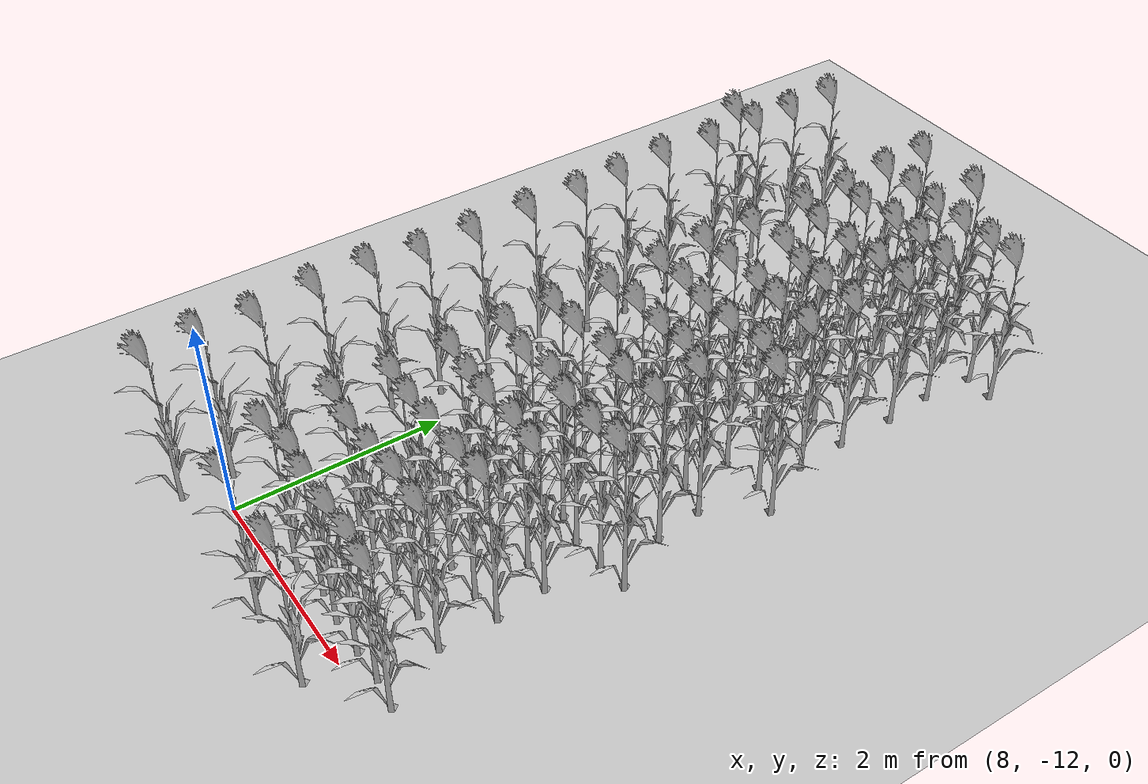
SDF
<sdf version="1.7">
 <world name="farmland_world">
  <model name="ground_plane">
   <static>1</static>
   <link name="link">
    <collision name="collision">
     <geometry><plane><normal>0 0 1</normal><size>40.0 40.0</size></plane></geometry>
     <surface><friction><ode><mu>100</mu><mu2>50</mu2></ode></friction></surface>
    </collision>
    <visual name="visual">
     <cast_shadows>0</cast_shadows>
     <geometry><plane><normal>0 0 1</normal><size>40.0 40.0</size></plane></geometry>
     <material>
      <script><uri>file://media/materials/scripts/gazebo.material</uri><name>Gazebo/Grey</name></script>
     </material>
    </visual>
   </link>
  </model>
  <model name="tree_3_1089">
   <static>1</static>
   <link name="link">
    <collision name="collision">
     <geometry><mesh><uri>model://Corn_low_poly/corn.obj</uri><scale>1 1 1</scale></mesh></geometry>
     <surface><friction><ode><mu>100</mu><mu2>50</mu2></ode></friction></surface>
    </collision>
    <visual name="visual">
     <geometry><mesh><uri>model://Corn_low_poly/corn.obj</uri><scale>1 1 1</scale></mesh></geometry>
    </visual>
   </link>
   <pose>7.373463043404598 -6.061614558114489 0 0 0 0</pose>
  </model>
  <model name="tree_3_1113">
   <static>1</static>
   <link name="link">
    <collision name="collision">
     <geometry><mesh><uri>model://Corn_low_poly/corn.obj</uri><scale>1 1 1</scale></mesh></geometry>
     <surface><friction><ode><mu>100</mu><mu2>50</mu2></ode></friction></surface>
    </collision>
    <visual name="visual">
     <geometry><mesh><uri>model://Corn_low_poly/corn.obj</uri><scale>1 1 1</scale></mesh></geometry>
    </visual>
   </link>
   <pose>7.643223197940779 -5.087201397989733 0 0 0 0</pose>
  </model>
  <model name="tree_3_1114">
   <static>1</static>
   <link name="link">
    <collision name="collision">
     <geometry><mesh><uri>model://Corn_low_poly/corn.obj</uri><scale>1 1 1</scale></mesh></geometry>
     <surface><friction><ode><mu>100</mu><mu2>50</mu2></ode></friction></surface>
    </collision>
    <visual name="visual">
     <geometry><mesh><uri>model://Corn_low_poly/corn.obj</uri><scale>1 1 1</scale></mesh></geometry>
    </visual>
   </link>
   <pose>7.661120329069132 -5.601592224473214 0 0 0 0</pose>
  </model>
  <model name="tree_3_1115">
   <static>1</static>
   <link name="link">
    <collision name="collision">
     <geometry><mesh><uri>model://Corn_low_poly/corn.obj</uri><scale>1 1 1</scale></mesh></geometry>
     <surface><friction><ode><mu>100</mu><mu2>50</mu2></ode></friction></surface>
    </collision>
    <visual name="visual">
     <geometry><mesh><uri>model://Corn_low_poly/corn.obj</uri><scale>1 1 1</scale></mesh></geometry>
    </visual>
   </link>
   <pose>7.63402802859221 -6.031344780139192 0 0 0 0</pose>
  </model>
  <model name="tree_3_1116">
   <static>1</static>
   <link name="link">
    <collision name="collision">
     <geometry><mesh><uri>model://Corn_low_poly/corn.obj</uri><scale>1 1 1</scale></mesh></geometry>
     <surface><friction><ode><mu>100</mu><mu2>50</mu2></ode></friction></surface>
    </collision>
    <visual name="visual">
     <geometry><mesh><uri>model://Corn_low_poly/corn.obj</uri><scale>1 1 1</scale></mesh></geometry>
    </visual>
   </link>
   <pose>7.66875264356277 -6.585203287229432 0 0 0 0</pose>
  </model>
  <model name="tree_3_1117">
   <static>1</static>
   <link name="link">
    <collision name="collision">
     <geometry><mesh><uri>model://Corn_low_poly/corn.obj</uri><scale>1 1 1</scale></mesh></geometry>
     <surface><friction><ode><mu>100</mu><mu2>50</mu2></ode></friction></surface>
    </collision>
    <visual name="visual">
     <geometry><mesh><uri>model://Corn_low_poly/corn.obj</uri><scale>1 1 1</scale></mesh></geometry>
    </visual>
   </link>
   <pose>7.6212773356559635 -7.12121448393807 0 0 0 0</pose>
  </model>
  <model name="tree_3_1118">
   <static>1</static>
   <link name="link">
    <collision name="collision">
     <geometry><mesh><uri>model://Corn_low_poly/corn.obj</uri><scale>1 1 1</scale></mesh></geometry>
     <surface><friction><ode><mu>100</mu><mu2>50</mu2></ode></friction></surface>
    </collision>
    <visual name="visual">
     <geometry><mesh><uri>model://Corn_low_poly/corn.obj</uri><scale>1 1 1</scale></mesh></geometry>
    </visual>
   </link>
   <pose>7.664107159891394 -7.650606513183118 0 0 0 0</pose>
  </model>
  <model name="tree_3_1119">
   <static>1</static>
   <link name="link">
    <collision name="collision">
     <geometry><mesh><uri>model://Corn_low_poly/corn.obj</uri><scale>1 1 1</scale></mesh></geometry>
     <surface><friction><ode><mu>100</mu><mu2>50</mu2></ode></friction></surface>
    </collision>
    <visual name="visual">
     <geometry><mesh><uri>model://Corn_low_poly/corn.obj</uri><scale>1 1 1</scale></mesh></geometry>
    </visual>
   </link>
   <pose>7.694366505356116 -8.120791481744874 0 0 0 0</pose>
  </model>
  <model name="tree_3_1120">
   <static>1</static>
   <link name="link">
    <collision name="collision">
     <geometry><mesh><uri>model://Corn_low_poly/corn.obj</uri><scale>1 1 1</scale></mesh></geometry>
     <surface><friction><ode><mu>100</mu><mu2>50</mu2></ode></friction></surface>
    </collision>
    <visual name="visual">
     <geometry><mesh><uri>model://Corn_low_poly/corn.obj</uri><scale>1 1 1</scale></mesh></geometry>
    </visual>
   </link>
   <pose>7.683954685809322 -8.664213094252231 0 0 0 0</pose>
  </model>
  <model name="tree_3_1121">
   <static>1</static>
   <link name="link">
    <collision name="collision">
     <geometry><mesh><uri>model://Corn_low_poly/corn.obj</uri><scale>1 1 1</scale></mesh></geometry>
     <surface><friction><ode><mu>100</mu><mu2>50</mu2></ode></friction></surface>
    </collision>
    <visual name="visual">
     <geometry><mesh><uri>model://Corn_low_poly/corn.obj</uri><scale>1 1 1</scale></mesh></geometry>
    </visual>
   </link>
   <pose>7.706808902903273 -9.24765323350071 0 0 0 0</pose>
  </model>
  <model name="tree_3_1122">
   <static>1</static>
   <link name="link">
    <collision name="collision">
     <geometry><mesh><uri>model://Corn_low_poly/corn.obj</uri><scale>1 1 1</scale></mesh></geometry>
     <surface><friction><ode><mu>100</mu><mu2>50</mu2></ode></friction></surface>
    </collision>
    <visual name="visual">
     <geometry><mesh><uri>model://Corn_low_poly/corn.obj</uri><scale>1 1 1</scale></mesh></geometry>
    </visual>
   </link>
   <pose>7.697520223263541 -9.76146941336156 0 0 0 0</pose>
  </model>
  <model name="tree_3_1123">
   <static>1</static>
   <link name="link">
    <collision name="collision">
     <geometry><mesh><uri>model://Corn_low_poly/corn.obj</uri><scale>1 1 1</scale></mesh></geometry>
     <surface><friction><ode><mu>100</mu><mu2>50</mu2></ode></friction></surface>
    </collision>
    <visual name="visual">
     <geometry><mesh><uri>model://Corn_low_poly/corn.obj</uri><scale>1 1 1</scale></mesh></geometry>
    </visual>
   </link>
   <pose>7.623219884596177 -10.236661311143688 0 0 0 0</pose>
  </model>
  <model name="tree_3_1124">
   <static>1</static>
   <link name="link">
    <collision name="collision">
     <geometry><mesh><uri>model://Corn_low_poly/corn.obj</uri><scale>1 1 1</scale></mesh></geometry>
     <surface><friction><ode><mu>100</mu><mu2>50</mu2></ode></friction></surface>
    </collision>
    <visual name="visual">
     <geometry><mesh><uri>model://Corn_low_poly/corn.obj</uri><scale>1 1 1</scale></mesh></geometry>
    </visual>
   </link>
   <pose>7.625424230541446 -10.757639816009913 0 0 0 0</pose>
  </model>
  <model name="tree_3_1125">
   <static>1</static>
   <link name="link">
    <collision name="collision">
     <geometry><mesh><uri>model://Corn_low_poly/corn.obj</uri><scale>1 1 1</scale></mesh></geometry>
     <surface><friction><ode><mu>100</mu><mu2>50</mu2></ode></friction></surface>
    </collision>
    <visual name="visual">
     <geometry><mesh><uri>model://Corn_low_poly/corn.obj</uri><scale>1 1 1</scale></mesh></geometry>
    </visual>
   </link>
   <pose>7.698247415521829 -11.328317349767586 0 0 0 0</pose>
  </model>
  <model name="tree_3_1126">
   <static>1</static>
   <link name="link">
    <collision name="collision">
     <geometry><mesh><uri>model://Corn_low_poly/corn.obj</uri><scale>1 1 1</scale></mesh></geometry>
     <surface><friction><ode><mu>100</mu><mu2>50</mu2></ode></friction></surface>
    </collision>
    <visual name="visual">
     <geometry><mesh><uri>model://Corn_low_poly/corn.obj</uri><scale>1 1 1</scale></mesh></geometry>
    </visual>
   </link>
   <pose>7.647416739573974 -11.81360957177488 0 0 0 0</pose>
  </model>
  <model name="tree_3_1127">
   <static>1</static>
   <link name="link">
    <collision name="collision">
     <geometry><mesh><uri>model://Corn_low_poly/corn.obj</uri><scale>1 1 1</scale></mesh></geometry>
     <surface><friction><ode><mu>100</mu><mu2>50</mu2></ode></friction></surface>
    </collision>
    <visual name="visual">
     <geometry><mesh><uri>model://Corn_low_poly/corn.obj</uri><scale>1 1 1</scale></mesh></geometry>
    </visual>
   </link>
   <pose>7.655448347450653 -12.290702209058429 0 0 0 0</pose>
  </model>
  <model name="tree_3_1139">
   <static>1</static>
   <link name="link">
    <collision name="collision">
     <geometry><mesh><uri>model://Corn_low_poly/corn.obj</uri><scale>1 1 1</scale></mesh></geometry>
     <surface><friction><ode><mu>100</mu><mu2>50</mu2></ode></friction></surface>
    </collision>
    <visual name="visual">
     <geometry><mesh><uri>model://Corn_low_poly/corn.obj</uri><scale>1 1 1</scale></mesh></geometry>
    </visual>
   </link>
   <pose>8.96567127282083 -5.062800397356018 0 0 0 0</pose>
  </model>
  <model name="tree_3_1140">
   <static>1</static>
   <link name="link">
    <collision name="collision">
     <geometry><mesh><uri>model://Corn_low_poly/corn.obj</uri><scale>1 1 1</scale></mesh></geometry>
     <surface><friction><ode><mu>100</mu><mu2>50</mu2></ode></friction></surface>
    </collision>
    <visual name="visual">
     <geometry><mesh><uri>model://Corn_low_poly/corn.obj</uri><scale>1 1 1</scale></mesh></geometry>
    </visual>
   </link>
   <pose>8.978622709243822 -5.548538041759192 0 0 0 0</pose>
  </model>
  <model name="tree_3_1141">
   <static>1</static>
   <link name="link">
    <collision name="collision">
     <geometry><mesh><uri>model://Corn_low_poly/corn.obj</uri><scale>1 1 1</scale></mesh></geometry>
     <surface><friction><ode><mu>100</mu><mu2>50</mu2></ode></friction></surface>
    </collision>
    <visual name="visual">
     <geometry><mesh><uri>model://Corn_low_poly/corn.obj</uri><scale>1 1 1</scale></mesh></geometry>
    </visual>
   </link>
   <pose>9.020095383873397 -6.06532683944891 0 0 0 0</pose>
  </model>
  <model name="tree_3_1142">
   <static>1</static>
   <link name="link">
    <collision name="collision">
     <geometry><mesh><uri>model://Corn_low_poly/corn.obj</uri><scale>1 1 1</scale></mesh></geometry>
     <surface><friction><ode><mu>100</mu><mu2>50</mu2></ode></friction></surface>
    </collision>
    <visual name="visual">
     <geometry><mesh><uri>model://Corn_low_poly/corn.obj</uri><scale>1 1 1</scale></mesh></geometry>
    </visual>
   </link>
   <pose>9.01230063168478 -6.5615183018766015 0 0 0 0</pose>
  </model>
  <model name="tree_3_1143">
   <static>1</static>
   <link name="link">
    <collision name="collision">
     <geometry><mesh><uri>model://Corn_low_poly/corn.obj</uri><scale>1 1 1</scale></mesh></geometry>
     <surface><friction><ode><mu>100</mu><mu2>50</mu2></ode></friction></surface>
    </collision>
    <visual name="visual">
     <geometry><mesh><uri>model://Corn_low_poly/corn.obj</uri><scale>1 1 1</scale></mesh></geometry>
    </visual>
   </link>
   <pose>9.005956300258477 -7.151464572757111 0 0 0 0</pose>
  </model>
  <model name="tree_3_1144">
   <static>1</static>
   <link name="link">
    <collision name="collision">
     <geometry><mesh><uri>model://Corn_low_poly/corn.obj</uri><scale>1 1 1</scale></mesh></geometry>
     <surface><friction><ode><mu>100</mu><mu2>50</mu2></ode></friction></surface>
    </collision>
    <visual name="visual">
     <geometry><mesh><uri>model://Corn_low_poly/corn.obj</uri><scale>1 1 1</scale></mesh></geometry>
    </visual>
   </link>
   <pose>8.970138582536606 -7.651377074699915 0 0 0 0</pose>
  </model>
  <model name="tree_3_1145">
   <static>1</static>
   <link name="link">
    <collision name="collision">
     <geometry><mesh><uri>model://Corn_low_poly/corn.obj</uri><scale>1 1 1</scale></mesh></geometry>
     <surface><friction><ode><mu>100</mu><mu2>50</mu2></ode></friction></surface>
    </collision>
    <visual name="visual">
     <geometry><mesh><uri>model://Corn_low_poly/corn.obj</uri><scale>1 1 1</scale></mesh></geometry>
    </visual>
   </link>
   <pose>8.996400861401781 -8.150808558617635 0 0 0 0</pose>
  </model>
  <model name="tree_3_1146">
   <static>1</static>
   <link name="link">
    <collision name="collision">
     <geometry><mesh><uri>model://Corn_low_poly/corn.obj</uri><scale>1 1 1</scale></mesh></geometry>
     <surface><friction><ode><mu>100</mu><mu2>50</mu2></ode></friction></surface>
    </collision>
    <visual name="visual">
     <geometry><mesh><uri>model://Corn_low_poly/corn.obj</uri><scale>1 1 1</scale></mesh></geometry>
    </visual>
   </link>
   <pose>9.026399342011263 -8.690001157320415 0 0 0 0</pose>
  </model>
  <model name="tree_3_1147">
   <static>1</static>
   <link name="link">
    <collision name="collision">
     <geometry><mesh><uri>model://Corn_low_poly/corn.obj</uri><scale>1 1 1</scale></mesh></geometry>
     <surface><friction><ode><mu>100</mu><mu2>50</mu2></ode></friction></surface>
    </collision>
    <visual name="visual">
     <geometry><mesh><uri>model://Corn_low_poly/corn.obj</uri><scale>1 1 1</scale></mesh></geometry>
    </visual>
   </link>
   <pose>8.986738688260957 -9.218499689213568 0 0 0 0</pose>
  </model>
  <model name="tree_3_1148">
   <static>1</static>
   <link name="link">
    <collision name="collision">
     <geometry><mesh><uri>model://Corn_low_poly/corn.obj</uri><scale>1 1 1</scale></mesh></geometry>
     <surface><friction><ode><mu>100</mu><mu2>50</mu2></ode></friction></surface>
    </collision>
    <visual name="visual">
     <geometry><mesh><uri>model://Corn_low_poly/corn.obj</uri><scale>1 1 1</scale></mesh></geometry>
    </visual>
   </link>
   <pose>8.994399841065116 -9.685318026949306 0 0 0 0</pose>
  </model>
  <model name="tree_3_1149">
   <static>1</static>
   <link name="link">
    <collision name="collision">
     <geometry><mesh><uri>model://Corn_low_poly/corn.obj</uri><scale>1 1 1</scale></mesh></geometry>
     <surface><friction><ode><mu>100</mu><mu2>50</mu2></ode></friction></surface>
    </collision>
    <visual name="visual">
     <geometry><mesh><uri>model://Corn_low_poly/corn.obj</uri><scale>1 1 1</scale></mesh></geometry>
    </visual>
   </link>
   <pose>8.992408508656917 -10.202525275837697 0 0 0 0</pose>
  </model>
  <model name="tree_3_1150">
   <static>1</static>
   <link name="link">
    <collision name="collision">
     <geometry><mesh><uri>model://Corn_low_poly/corn.obj</uri><scale>1 1 1</scale></mesh></geometry>
     <surface><friction><ode><mu>100</mu><mu2>50</mu2></ode></friction></surface>
    </collision>
    <visual name="visual">
     <geometry><mesh><uri>model://Corn_low_poly/corn.obj</uri><scale>1 1 1</scale></mesh></geometry>
    </visual>
   </link>
   <pose>9.002899398710381 -10.738430988784868 0 0 0 0</pose>
  </model>
  <model name="tree_3_1151">
   <static>1</static>
   <link name="link">
    <collision name="collision">
     <geometry><mesh><uri>model://Corn_low_poly/corn.obj</uri><scale>1 1 1</scale></mesh></geometry>
     <surface><friction><ode><mu>100</mu><mu2>50</mu2></ode></friction></surface>
    </collision>
    <visual name="visual">
     <geometry><mesh><uri>model://Corn_low_poly/corn.obj</uri><scale>1 1 1</scale></mesh></geometry>
    </visual>
   </link>
   <pose>8.964173990640038 -11.23063824553889 0 0 0 0</pose>
  </model>
  <model name="tree_3_1152">
   <static>1</static>
   <link name="link">
    <collision name="collision">
     <geometry><mesh><uri>model://Corn_low_poly/corn.obj</uri><scale>1 1 1</scale></mesh></geometry>
     <surface><friction><ode><mu>100</mu><mu2>50</mu2></ode></friction></surface>
    </collision>
    <visual name="visual">
     <geometry><mesh><uri>model://Corn_low_poly/corn.obj</uri><scale>1 1 1</scale></mesh></geometry>
    </visual>
   </link>
   <pose>8.959381720760552 -11.817772347244972 0 0 0 0</pose>
  </model>
  <model name="tree_3_1166">
   <static>1</static>
   <link name="link">
    <collision name="collision">
     <geometry><mesh><uri>model://Corn_low_poly/corn.obj</uri><scale>1 1 1</scale></mesh></geometry>
     <surface><friction><ode><mu>100</mu><mu2>50</mu2></ode></friction></surface>
    </collision>
    <visual name="visual">
     <geometry><mesh><uri>model://Corn_low_poly/corn.obj</uri><scale>1 1 1</scale></mesh></geometry>
    </visual>
   </link>
   <pose>9.35311362840029 -5.549901497882502 0 0 0 0</pose>
  </model>
  <model name="tree_3_1167">
   <static>1</static>
   <link name="link">
    <collision name="collision">
     <geometry><mesh><uri>model://Corn_low_poly/corn.obj</uri><scale>1 1 1</scale></mesh></geometry>
     <surface><friction><ode><mu>100</mu><mu2>50</mu2></ode></friction></surface>
    </collision>
    <visual name="visual">
     <geometry><mesh><uri>model://Corn_low_poly/corn.obj</uri><scale>1 1 1</scale></mesh></geometry>
    </visual>
   </link>
   <pose>9.284637511514404 -6.109121542213807 0 0 0 0</pose>
  </model>
  <model name="tree_3_1168">
   <static>1</static>
   <link name="link">
    <collision name="collision">
     <geometry><mesh><uri>model://Corn_low_poly/corn.obj</uri><scale>1 1 1</scale></mesh></geometry>
     <surface><friction><ode><mu>100</mu><mu2>50</mu2></ode></friction></surface>
    </collision>
    <visual name="visual">
     <geometry><mesh><uri>model://Corn_low_poly/corn.obj</uri><scale>1 1 1</scale></mesh></geometry>
    </visual>
   </link>
   <pose>9.31249433925867 -6.629936638469689 0 0 0 0</pose>
  </model>
  <model name="tree_3_1169">
   <static>1</static>
   <link name="link">
    <collision name="collision">
     <geometry><mesh><uri>model://Corn_low_poly/corn.obj</uri><scale>1 1 1</scale></mesh></geometry>
     <surface><friction><ode><mu>100</mu><mu2>50</mu2></ode></friction></surface>
    </collision>
    <visual name="visual">
     <geometry><mesh><uri>model://Corn_low_poly/corn.obj</uri><scale>1 1 1</scale></mesh></geometry>
    </visual>
   </link>
   <pose>9.375427374370881 -7.085550428749509 0 0 0 0</pose>
  </model>
  <model name="tree_3_1170">
   <static>1</static>
   <link name="link">
    <collision name="collision">
     <geometry><mesh><uri>model://Corn_low_poly/corn.obj</uri><scale>1 1 1</scale></mesh></geometry>
     <surface><friction><ode><mu>100</mu><mu2>50</mu2></ode></friction></surface>
    </collision>
    <visual name="visual">
     <geometry><mesh><uri>model://Corn_low_poly/corn.obj</uri><scale>1 1 1</scale></mesh></geometry>
    </visual>
   </link>
   <pose>9.315569965163867 -7.650798030798965 0 0 0 0</pose>
  </model>
  <model name="tree_3_1171">
   <static>1</static>
   <link name="link">
    <collision name="collision">
     <geometry><mesh><uri>model://Corn_low_poly/corn.obj</uri><scale>1 1 1</scale></mesh></geometry>
     <surface><friction><ode><mu>100</mu><mu2>50</mu2></ode></friction></surface>
    </collision>
    <visual name="visual">
     <geometry><mesh><uri>model://Corn_low_poly/corn.obj</uri><scale>1 1 1</scale></mesh></geometry>
    </visual>
   </link>
   <pose>9.31538048760512 -8.13616135372896 0 0 0 0</pose>
  </model>
  <model name="tree_3_1172">
   <static>1</static>
   <link name="link">
    <collision name="collision">
     <geometry><mesh><uri>model://Corn_low_poly/corn.obj</uri><scale>1 1 1</scale></mesh></geometry>
     <surface><friction><ode><mu>100</mu><mu2>50</mu2></ode></friction></surface>
    </collision>
    <visual name="visual">
     <geometry><mesh><uri>model://Corn_low_poly/corn.obj</uri><scale>1 1 1</scale></mesh></geometry>
    </visual>
   </link>
   <pose>9.325990286509777 -8.633187590136304 0 0 0 0</pose>
  </model>
  <model name="tree_3_1173">
   <static>1</static>
   <link name="link">
    <collision name="collision">
     <geometry><mesh><uri>model://Corn_low_poly/corn.obj</uri><scale>1 1 1</scale></mesh></geometry>
     <surface><friction><ode><mu>100</mu><mu2>50</mu2></ode></friction></surface>
    </collision>
    <visual name="visual">
     <geometry><mesh><uri>model://Corn_low_poly/corn.obj</uri><scale>1 1 1</scale></mesh></geometry>
    </visual>
   </link>
   <pose>9.285424833063889 -9.214025456253827 0 0 0 0</pose>
  </model>
  <model name="tree_3_1174">
   <static>1</static>
   <link name="link">
    <collision name="collision">
     <geometry><mesh><uri>model://Corn_low_poly/corn.obj</uri><scale>1 1 1</scale></mesh></geometry>
     <surface><friction><ode><mu>100</mu><mu2>50</mu2></ode></friction></surface>
    </collision>
    <visual name="visual">
     <geometry><mesh><uri>model://Corn_low_poly/corn.obj</uri><scale>1 1 1</scale></mesh></geometry>
    </visual>
   </link>
   <pose>9.36697092961034 -9.755213772909675 0 0 0 0</pose>
  </model>
  <model name="tree_3_1175">
   <static>1</static>
   <link name="link">
    <collision name="collision">
     <geometry><mesh><uri>model://Corn_low_poly/corn.obj</uri><scale>1 1 1</scale></mesh></geometry>
     <surface><friction><ode><mu>100</mu><mu2>50</mu2></ode></friction></surface>
    </collision>
    <visual name="visual">
     <geometry><mesh><uri>model://Corn_low_poly/corn.obj</uri><scale>1 1 1</scale></mesh></geometry>
    </visual>
   </link>
   <pose>9.370632605185234 -10.252023421273263 0 0 0 0</pose>
  </model>
  <model name="tree_3_1176">
   <static>1</static>
   <link name="link">
    <collision name="collision">
     <geometry><mesh><uri>model://Corn_low_poly/corn.obj</uri><scale>1 1 1</scale></mesh></geometry>
     <surface><friction><ode><mu>100</mu><mu2>50</mu2></ode></friction></surface>
    </collision>
    <visual name="visual">
     <geometry><mesh><uri>model://Corn_low_poly/corn.obj</uri><scale>1 1 1</scale></mesh></geometry>
    </visual>
   </link>
   <pose>9.331844221340882 -10.764073994643248 0 0 0 0</pose>
  </model>
  <model name="tree_3_1177">
   <static>1</static>
   <link name="link">
    <collision name="collision">
     <geometry><mesh><uri>model://Corn_low_poly/corn.obj</uri><scale>1 1 1</scale></mesh></geometry>
     <surface><friction><ode><mu>100</mu><mu2>50</mu2></ode></friction></surface>
    </collision>
    <visual name="visual">
     <geometry><mesh><uri>model://Corn_low_poly/corn.obj</uri><scale>1 1 1</scale></mesh></geometry>
    </visual>
   </link>
   <pose>9.294299479450407 -11.269735053344665 0 0 0 0</pose>
  </model>
  <model name="tree_3_1178">
   <static>1</static>
   <link name="link">
    <collision name="collision">
     <geometry><mesh><uri>model://Corn_low_poly/corn.obj</uri><scale>1 1 1</scale></mesh></geometry>
     <surface><friction><ode><mu>100</mu><mu2>50</mu2></ode></friction></surface>
    </collision>
    <visual name="visual">
     <geometry><mesh><uri>model://Corn_low_poly/corn.obj</uri><scale>1 1 1</scale></mesh></geometry>
    </visual>
   </link>
   <pose>9.312309131688513 -11.756204968582152 0 0 0 0</pose>
  </model>
  <model name="tree_3_1179">
   <static>1</static>
   <link name="link">
    <collision name="collision">
     <geometry><mesh><uri>model://Corn_low_poly/corn.obj</uri><scale>1 1 1</scale></mesh></geometry>
     <surface><friction><ode><mu>100</mu><mu2>50</mu2></ode></friction></surface>
    </collision>
    <visual name="visual">
     <geometry><mesh><uri>model://Corn_low_poly/corn.obj</uri><scale>1 1 1</scale></mesh></geometry>
    </visual>
   </link>
   <pose>9.280427956645463 -12.291440116871625 0 0 0 0</pose>
  </model>
  <model name="tree_3_1191">
   <static>1</static>
   <link name="link">
    <collision name="collision">
     <geometry><mesh><uri>model://Corn_low_poly/corn.obj</uri><scale>1 1 1</scale></mesh></geometry>
     <surface><friction><ode><mu>100</mu><mu2>50</mu2></ode></friction></surface>
    </collision>
    <visual name="visual">
     <geometry><mesh><uri>model://Corn_low_poly/corn.obj</uri><scale>1 1 1</scale></mesh></geometry>
    </visual>
   </link>
   <pose>9.670857474584004 -5.0860366406483815 0 0 0 0</pose>
  </model>
  <model name="tree_3_1192">
   <static>1</static>
   <link name="link">
    <collision name="collision">
     <geometry><mesh><uri>model://Corn_low_poly/corn.obj</uri><scale>1 1 1</scale></mesh></geometry>
     <surface><friction><ode><mu>100</mu><mu2>50</mu2></ode></friction></surface>
    </collision>
    <visual name="visual">
     <geometry><mesh><uri>model://Corn_low_poly/corn.obj</uri><scale>1 1 1</scale></mesh></geometry>
    </visual>
   </link>
   <pose>9.682147667138377 -5.588062046399095 0 0 0 0</pose>
  </model>
  <model name="tree_3_1193">
   <static>1</static>
   <link name="link">
    <collision name="collision">
     <geometry><mesh><uri>model://Corn_low_poly/corn.obj</uri><scale>1 1 1</scale></mesh></geometry>
     <surface><friction><ode><mu>100</mu><mu2>50</mu2></ode></friction></surface>
    </collision>
    <visual name="visual">
     <geometry><mesh><uri>model://Corn_low_poly/corn.obj</uri><scale>1 1 1</scale></mesh></geometry>
    </visual>
   </link>
   <pose>9.647765691123427 -6.054509167526567 0 0 0 0</pose>
  </model>
  <model name="tree_3_1194">
   <static>1</static>
   <link name="link">
    <collision name="collision">
     <geometry><mesh><uri>model://Corn_low_poly/corn.obj</uri><scale>1 1 1</scale></mesh></geometry>
     <surface><friction><ode><mu>100</mu><mu2>50</mu2></ode></friction></surface>
    </collision>
    <visual name="visual">
     <geometry><mesh><uri>model://Corn_low_poly/corn.obj</uri><scale>1 1 1</scale></mesh></geometry>
    </visual>
   </link>
   <pose>9.699528651075525 -6.634319133805928 0 0 0 0</pose>
  </model>
  <model name="tree_3_1195">
   <static>1</static>
   <link name="link">
    <collision name="collision">
     <geometry><mesh><uri>model://Corn_low_poly/corn.obj</uri><scale>1 1 1</scale></mesh></geometry>
     <surface><friction><ode><mu>100</mu><mu2>50</mu2></ode></friction></surface>
    </collision>
    <visual name="visual">
     <geometry><mesh><uri>model://Corn_low_poly/corn.obj</uri><scale>1 1 1</scale></mesh></geometry>
    </visual>
   </link>
   <pose>9.709830327029346 -7.169057839072819 0 0 0 0</pose>
  </model>
  <model name="tree_3_1196">
   <static>1</static>
   <link name="link">
    <collision name="collision">
     <geometry><mesh><uri>model://Corn_low_poly/corn.obj</uri><scale>1 1 1</scale></mesh></geometry>
     <surface><friction><ode><mu>100</mu><mu2>50</mu2></ode></friction></surface>
    </collision>
    <visual name="visual">
     <geometry><mesh><uri>model://Corn_low_poly/corn.obj</uri><scale>1 1 1</scale></mesh></geometry>
    </visual>
   </link>
   <pose>9.692251166578535 -7.63606544719618 0 0 0 0</pose>
  </model>
  <model name="tree_3_1197">
   <static>1</static>
   <link name="link">
    <collision name="collision">
     <geometry><mesh><uri>model://Corn_low_poly/corn.obj</uri><scale>1 1 1</scale></mesh></geometry>
     <surface><friction><ode><mu>100</mu><mu2>50</mu2></ode></friction></surface>
    </collision>
    <visual name="visual">
     <geometry><mesh><uri>model://Corn_low_poly/corn.obj</uri><scale>1 1 1</scale></mesh></geometry>
    </visual>
   </link>
   <pose>9.647723043126854 -8.177939221876805 0 0 0 0</pose>
  </model>
  <model name="tree_3_1198">
   <static>1</static>
   <link name="link">
    <collision name="collision">
     <geometry><mesh><uri>model://Corn_low_poly/corn.obj</uri><scale>1 1 1</scale></mesh></geometry>
     <surface><friction><ode><mu>100</mu><mu2>50</mu2></ode></friction></surface>
    </collision>
    <visual name="visual">
     <geometry><mesh><uri>model://Corn_low_poly/corn.obj</uri><scale>1 1 1</scale></mesh></geometry>
    </visual>
   </link>
   <pose>9.688936635844287 -8.655358803314655 0 0 0 0</pose>
  </model>
  <model name="tree_3_1199">
   <static>1</static>
   <link name="link">
    <collision name="collision">
     <geometry><mesh><uri>model://Corn_low_poly/corn.obj</uri><scale>1 1 1</scale></mesh></geometry>
     <surface><friction><ode><mu>100</mu><mu2>50</mu2></ode></friction></surface>
    </collision>
    <visual name="visual">
     <geometry><mesh><uri>model://Corn_low_poly/corn.obj</uri><scale>1 1 1</scale></mesh></geometry>
    </visual>
   </link>
   <pose>9.717906772350617 -9.183026899597644 0 0 0 0</pose>
  </model>
  <model name="tree_3_1200">
   <static>1</static>
   <link name="link">
    <collision name="collision">
     <geometry><mesh><uri>model://Corn_low_poly/corn.obj</uri><scale>1 1 1</scale></mesh></geometry>
     <surface><friction><ode><mu>100</mu><mu2>50</mu2></ode></friction></surface>
    </collision>
    <visual name="visual">
     <geometry><mesh><uri>model://Corn_low_poly/corn.obj</uri><scale>1 1 1</scale></mesh></geometry>
    </visual>
   </link>
   <pose>9.699040891487789 -9.701647726842735 0 0 0 0</pose>
  </model>
  <model name="tree_3_1201">
   <static>1</static>
   <link name="link">
    <collision name="collision">
     <geometry><mesh><uri>model://Corn_low_poly/corn.obj</uri><scale>1 1 1</scale></mesh></geometry>
     <surface><friction><ode><mu>100</mu><mu2>50</mu2></ode></friction></surface>
    </collision>
    <visual name="visual">
     <geometry><mesh><uri>model://Corn_low_poly/corn.obj</uri><scale>1 1 1</scale></mesh></geometry>
    </visual>
   </link>
   <pose>9.63158039266496 -10.261752463635487 0 0 0 0</pose>
  </model>
  <model name="tree_3_1202">
   <static>1</static>
   <link name="link">
    <collision name="collision">
     <geometry><mesh><uri>model://Corn_low_poly/corn.obj</uri><scale>1 1 1</scale></mesh></geometry>
     <surface><friction><ode><mu>100</mu><mu2>50</mu2></ode></friction></surface>
    </collision>
    <visual name="visual">
     <geometry><mesh><uri>model://Corn_low_poly/corn.obj</uri><scale>1 1 1</scale></mesh></geometry>
    </visual>
   </link>
   <pose>9.652437465124676 -10.764168036455306 0 0 0 0</pose>
  </model>
  <model name="tree_3_1203">
   <static>1</static>
   <link name="link">
    <collision name="collision">
     <geometry><mesh><uri>model://Corn_low_poly/corn.obj</uri><scale>1 1 1</scale></mesh></geometry>
     <surface><friction><ode><mu>100</mu><mu2>50</mu2></ode></friction></surface>
    </collision>
    <visual name="visual">
     <geometry><mesh><uri>model://Corn_low_poly/corn.obj</uri><scale>1 1 1</scale></mesh></geometry>
    </visual>
   </link>
   <pose>9.662421572230752 -11.269010377950753 0 0 0 0</pose>
  </model>
  <model name="tree_3_1204">
   <static>1</static>
   <link name="link">
    <collision name="collision">
     <geometry><mesh><uri>model://Corn_low_poly/corn.obj</uri><scale>1 1 1</scale></mesh></geometry>
     <surface><friction><ode><mu>100</mu><mu2>50</mu2></ode></friction></surface>
    </collision>
    <visual name="visual">
     <geometry><mesh><uri>model://Corn_low_poly/corn.obj</uri><scale>1 1 1</scale></mesh></geometry>
    </visual>
   </link>
   <pose>9.63637077082255 -11.79862717646708 0 0 0 0</pose>
  </model>
  <model name="tree_3_1218">
   <static>1</static>
   <link name="link">
    <collision name="collision">
     <geometry><mesh><uri>model://Corn_low_poly/corn.obj</uri><scale>1 1 1</scale></mesh></geometry>
     <surface><friction><ode><mu>100</mu><mu2>50</mu2></ode></friction></surface>
    </collision>
    <visual name="visual">
     <geometry><mesh><uri>model://Corn_low_poly/corn.obj</uri><scale>1 1 1</scale></mesh></geometry>
    </visual>
   </link>
   <pose>10.004391968405749 -5.56763162752845 0 0 0 0</pose>
  </model>
  <model name="tree_3_1219">
   <static>1</static>
   <link name="link">
    <collision name="collision">
     <geometry><mesh><uri>model://Corn_low_poly/corn.obj</uri><scale>1 1 1</scale></mesh></geometry>
     <surface><friction><ode><mu>100</mu><mu2>50</mu2></ode></friction></surface>
    </collision>
    <visual name="visual">
     <geometry><mesh><uri>model://Corn_low_poly/corn.obj</uri><scale>1 1 1</scale></mesh></geometry>
    </visual>
   </link>
   <pose>9.951357759313806 -6.037156269491317 0 0 0 0</pose>
  </model>
  <model name="tree_3_1220">
   <static>1</static>
   <link name="link">
    <collision name="collision">
     <geometry><mesh><uri>model://Corn_low_poly/corn.obj</uri><scale>1 1 1</scale></mesh></geometry>
     <surface><friction><ode><mu>100</mu><mu2>50</mu2></ode></friction></surface>
    </collision>
    <visual name="visual">
     <geometry><mesh><uri>model://Corn_low_poly/corn.obj</uri><scale>1 1 1</scale></mesh></geometry>
    </visual>
   </link>
   <pose>10.015307404764181 -6.574705247918372 0 0 0 0</pose>
  </model>
  <model name="tree_3_1221">
   <static>1</static>
   <link name="link">
    <collision name="collision">
     <geometry><mesh><uri>model://Corn_low_poly/corn.obj</uri><scale>1 1 1</scale></mesh></geometry>
     <surface><friction><ode><mu>100</mu><mu2>50</mu2></ode></friction></surface>
    </collision>
    <visual name="visual">
     <geometry><mesh><uri>model://Corn_low_poly/corn.obj</uri><scale>1 1 1</scale></mesh></geometry>
    </visual>
   </link>
   <pose>9.973083237959942 -7.162192619264694 0 0 0 0</pose>
  </model>
  <model name="tree_3_1222">
   <static>1</static>
   <link name="link">
    <collision name="collision">
     <geometry><mesh><uri>model://Corn_low_poly/corn.obj</uri><scale>1 1 1</scale></mesh></geometry>
     <surface><friction><ode><mu>100</mu><mu2>50</mu2></ode></friction></surface>
    </collision>
    <visual name="visual">
     <geometry><mesh><uri>model://Corn_low_poly/corn.obj</uri><scale>1 1 1</scale></mesh></geometry>
    </visual>
   </link>
   <pose>9.952273860921805 -7.650801686375668 0 0 0 0</pose>
  </model>
  <model name="tree_3_1223">
   <static>1</static>
   <link name="link">
    <collision name="collision">
     <geometry><mesh><uri>model://Corn_low_poly/corn.obj</uri><scale>1 1 1</scale></mesh></geometry>
     <surface><friction><ode><mu>100</mu><mu2>50</mu2></ode></friction></surface>
    </collision>
    <visual name="visual">
     <geometry><mesh><uri>model://Corn_low_poly/corn.obj</uri><scale>1 1 1</scale></mesh></geometry>
    </visual>
   </link>
   <pose>9.968746431430844 -8.158932188831518 0 0 0 0</pose>
  </model>
  <model name="tree_3_1224">
   <static>1</static>
   <link name="link">
    <collision name="collision">
     <geometry><mesh><uri>model://Corn_low_poly/corn.obj</uri><scale>1 1 1</scale></mesh></geometry>
     <surface><friction><ode><mu>100</mu><mu2>50</mu2></ode></friction></surface>
    </collision>
    <visual name="visual">
     <geometry><mesh><uri>model://Corn_low_poly/corn.obj</uri><scale>1 1 1</scale></mesh></geometry>
    </visual>
   </link>
   <pose>9.985535619681638 -8.630507494400186 0 0 0 0</pose>
  </model>
  <model name="tree_3_1225">
   <static>1</static>
   <link name="link">
    <collision name="collision">
     <geometry><mesh><uri>model://Corn_low_poly/corn.obj</uri><scale>1 1 1</scale></mesh></geometry>
     <surface><friction><ode><mu>100</mu><mu2>50</mu2></ode></friction></surface>
    </collision>
    <visual name="visual">
     <geometry><mesh><uri>model://Corn_low_poly/corn.obj</uri><scale>1 1 1</scale></mesh></geometry>
    </visual>
   </link>
   <pose>10.01847496958241 -9.236521331841436 0 0 0 0</pose>
  </model>
  <model name="tree_3_1226">
   <static>1</static>
   <link name="link">
    <collision name="collision">
     <geometry><mesh><uri>model://Corn_low_poly/corn.obj</uri><scale>1 1 1</scale></mesh></geometry>
     <surface><friction><ode><mu>100</mu><mu2>50</mu2></ode></friction></surface>
    </collision>
    <visual name="visual">
     <geometry><mesh><uri>model://Corn_low_poly/corn.obj</uri><scale>1 1 1</scale></mesh></geometry>
    </visual>
   </link>
   <pose>10.00198028536543 -9.767923537558824 0 0 0 0</pose>
  </model>
  <model name="tree_3_1227">
   <static>1</static>
   <link name="link">
    <collision name="collision">
     <geometry><mesh><uri>model://Corn_low_poly/corn.obj</uri><scale>1 1 1</scale></mesh></geometry>
     <surface><friction><ode><mu>100</mu><mu2>50</mu2></ode></friction></surface>
    </collision>
    <visual name="visual">
     <geometry><mesh><uri>model://Corn_low_poly/corn.obj</uri><scale>1 1 1</scale></mesh></geometry>
    </visual>
   </link>
   <pose>9.998169145999471 -10.237833768053589 0 0 0 0</pose>
  </model>
  <model name="tree_3_1228">
   <static>1</static>
   <link name="link">
    <collision name="collision">
     <geometry><mesh><uri>model://Corn_low_poly/corn.obj</uri><scale>1 1 1</scale></mesh></geometry>
     <surface><friction><ode><mu>100</mu><mu2>50</mu2></ode></friction></surface>
    </collision>
    <visual name="visual">
     <geometry><mesh><uri>model://Corn_low_poly/corn.obj</uri><scale>1 1 1</scale></mesh></geometry>
    </visual>
   </link>
   <pose>10.043107634124988 -10.766542531149067 0 0 0 0</pose>
  </model>
  <model name="tree_3_1229">
   <static>1</static>
   <link name="link">
    <collision name="collision">
     <geometry><mesh><uri>model://Corn_low_poly/corn.obj</uri><scale>1 1 1</scale></mesh></geometry>
     <surface><friction><ode><mu>100</mu><mu2>50</mu2></ode></friction></surface>
    </collision>
    <visual name="visual">
     <geometry><mesh><uri>model://Corn_low_poly/corn.obj</uri><scale>1 1 1</scale></mesh></geometry>
    </visual>
   </link>
   <pose>9.9588290299418 -11.24217621934955 0 0 0 0</pose>
  </model>
  <model name="tree_3_1230">
   <static>1</static>
   <link name="link">
    <collision name="collision">
     <geometry><mesh><uri>model://Corn_low_poly/corn.obj</uri><scale>1 1 1</scale></mesh></geometry>
     <surface><friction><ode><mu>100</mu><mu2>50</mu2></ode></friction></surface>
    </collision>
    <visual name="visual">
     <geometry><mesh><uri>model://Corn_low_poly/corn.obj</uri><scale>1 1 1</scale></mesh></geometry>
    </visual>
   </link>
   <pose>10.01186127722415 -11.806819952716387 0 0 0 0</pose>
  </model>
  <model name="tree_3_1231">
   <static>1</static>
   <link name="link">
    <collision name="collision">
     <geometry><mesh><uri>model://Corn_low_poly/corn.obj</uri><scale>1 1 1</scale></mesh></geometry>
     <surface><friction><ode><mu>100</mu><mu2>50</mu2></ode></friction></surface>
    </collision>
    <visual name="visual">
     <geometry><mesh><uri>model://Corn_low_poly/corn.obj</uri><scale>1 1 1</scale></mesh></geometry>
    </visual>
   </link>
   <pose>10.04142010387851 -12.288450790287369 0 0 0 0</pose>
  </model>
  <model name="tree_3_1244">
   <static>1</static>
   <link name="link">
    <collision name="collision">
     <geometry><mesh><uri>model://Corn_low_poly/corn.obj</uri><scale>1 1 1</scale></mesh></geometry>
     <surface><friction><ode><mu>100</mu><mu2>50</mu2></ode></friction></surface>
    </collision>
    <visual name="visual">
     <geometry><mesh><uri>model://Corn_low_poly/corn.obj</uri><scale>1 1 1</scale></mesh></geometry>
    </visual>
   </link>
   <pose>10.341824654126853 -5.567841475519681 0 0 0 0</pose>
  </model>
  <model name="tree_3_1245">
   <static>1</static>
   <link name="link">
    <collision name="collision">
     <geometry><mesh><uri>model://Corn_low_poly/corn.obj</uri><scale>1 1 1</scale></mesh></geometry>
     <surface><friction><ode><mu>100</mu><mu2>50</mu2></ode></friction></surface>
    </collision>
    <visual name="visual">
     <geometry><mesh><uri>model://Corn_low_poly/corn.obj</uri><scale>1 1 1</scale></mesh></geometry>
    </visual>
   </link>
   <pose>10.305632565836019 -6.082093016876866 0 0 0 0</pose>
  </model>
  <model name="tree_3_1246">
   <static>1</static>
   <link name="link">
    <collision name="collision">
     <geometry><mesh><uri>model://Corn_low_poly/corn.obj</uri><scale>1 1 1</scale></mesh></geometry>
     <surface><friction><ode><mu>100</mu><mu2>50</mu2></ode></friction></surface>
    </collision>
    <visual name="visual">
     <geometry><mesh><uri>model://Corn_low_poly/corn.obj</uri><scale>1 1 1</scale></mesh></geometry>
    </visual>
   </link>
   <pose>10.34580721924234 -6.571445880197937 0 0 0 0</pose>
  </model>
  <model name="tree_3_1247">
   <static>1</static>
   <link name="link">
    <collision name="collision">
     <geometry><mesh><uri>model://Corn_low_poly/corn.obj</uri><scale>1 1 1</scale></mesh></geometry>
     <surface><friction><ode><mu>100</mu><mu2>50</mu2></ode></friction></surface>
    </collision>
    <visual name="visual">
     <geometry><mesh><uri>model://Corn_low_poly/corn.obj</uri><scale>1 1 1</scale></mesh></geometry>
    </visual>
   </link>
   <pose>10.341420391224236 -7.151697974770953 0 0 0 0</pose>
  </model>
  <model name="tree_3_1248">
   <static>1</static>
   <link name="link">
    <collision name="collision">
     <geometry><mesh><uri>model://Corn_low_poly/corn.obj</uri><scale>1 1 1</scale></mesh></geometry>
     <surface><friction><ode><mu>100</mu><mu2>50</mu2></ode></friction></surface>
    </collision>
    <visual name="visual">
     <geometry><mesh><uri>model://Corn_low_poly/corn.obj</uri><scale>1 1 1</scale></mesh></geometry>
    </visual>
   </link>
   <pose>10.366717010590781 -7.6485040947267455 0 0 0 0</pose>
  </model>
  <model name="tree_3_1249">
   <static>1</static>
   <link name="link">
    <collision name="collision">
     <geometry><mesh><uri>model://Corn_low_poly/corn.obj</uri><scale>1 1 1</scale></mesh></geometry>
     <surface><friction><ode><mu>100</mu><mu2>50</mu2></ode></friction></surface>
    </collision>
    <visual name="visual">
     <geometry><mesh><uri>model://Corn_low_poly/corn.obj</uri><scale>1 1 1</scale></mesh></geometry>
    </visual>
   </link>
   <pose>10.356007801484171 -8.114700078958796 0 0 0 0</pose>
  </model>
  <model name="tree_3_1250">
   <static>1</static>
   <link name="link">
    <collision name="collision">
     <geometry><mesh><uri>model://Corn_low_poly/corn.obj</uri><scale>1 1 1</scale></mesh></geometry>
     <surface><friction><ode><mu>100</mu><mu2>50</mu2></ode></friction></surface>
    </collision>
    <visual name="visual">
     <geometry><mesh><uri>model://Corn_low_poly/corn.obj</uri><scale>1 1 1</scale></mesh></geometry>
    </visual>
   </link>
   <pose>10.297514611884031 -8.721702352119273 0 0 0 0</pose>
  </model>
  <model name="tree_3_1251">
   <static>1</static>
   <link name="link">
    <collision name="collision">
     <geometry><mesh><uri>model://Corn_low_poly/corn.obj</uri><scale>1 1 1</scale></mesh></geometry>
     <surface><friction><ode><mu>100</mu><mu2>50</mu2></ode></friction></surface>
    </collision>
    <visual name="visual">
     <geometry><mesh><uri>model://Corn_low_poly/corn.obj</uri><scale>1 1 1</scale></mesh></geometry>
    </visual>
   </link>
   <pose>10.357681738056307 -9.179640805340279 0 0 0 0</pose>
  </model>
  <model name="tree_3_1252">
   <static>1</static>
   <link name="link">
    <collision name="collision">
     <geometry><mesh><uri>model://Corn_low_poly/corn.obj</uri><scale>1 1 1</scale></mesh></geometry>
     <surface><friction><ode><mu>100</mu><mu2>50</mu2></ode></friction></surface>
    </collision>
    <visual name="visual">
     <geometry><mesh><uri>model://Corn_low_poly/corn.obj</uri><scale>1 1 1</scale></mesh></geometry>
    </visual>
   </link>
   <pose>10.360911688393255 -9.768374982345824 0 0 0 0</pose>
  </model>
  <model name="tree_3_1253">
   <static>1</static>
   <link name="link">
    <collision name="collision">
     <geometry><mesh><uri>model://Corn_low_poly/corn.obj</uri><scale>1 1 1</scale></mesh></geometry>
     <surface><friction><ode><mu>100</mu><mu2>50</mu2></ode></friction></surface>
    </collision>
    <visual name="visual">
     <geometry><mesh><uri>model://Corn_low_poly/corn.obj</uri><scale>1 1 1</scale></mesh></geometry>
    </visual>
   </link>
   <pose>10.289454168310188 -10.264845661420802 0 0 0 0</pose>
  </model>
  <model name="tree_3_1254">
   <static>1</static>
   <link name="link">
    <collision name="collision">
     <geometry><mesh><uri>model://Corn_low_poly/corn.obj</uri><scale>1 1 1</scale></mesh></geometry>
     <surface><friction><ode><mu>100</mu><mu2>50</mu2></ode></friction></surface>
    </collision>
    <visual name="visual">
     <geometry><mesh><uri>model://Corn_low_poly/corn.obj</uri><scale>1 1 1</scale></mesh></geometry>
    </visual>
   </link>
   <pose>10.33861296093281 -10.74118342928336 0 0 0 0</pose>
  </model>
  <model name="tree_3_1255">
   <static>1</static>
   <link name="link">
    <collision name="collision">
     <geometry><mesh><uri>model://Corn_low_poly/corn.obj</uri><scale>1 1 1</scale></mesh></geometry>
     <surface><friction><ode><mu>100</mu><mu2>50</mu2></ode></friction></surface>
    </collision>
    <visual name="visual">
     <geometry><mesh><uri>model://Corn_low_poly/corn.obj</uri><scale>1 1 1</scale></mesh></geometry>
    </visual>
   </link>
   <pose>10.337984218734483 -11.269046849789337 0 0 0 0</pose>
  </model>
  <model name="tree_3_1256">
   <static>1</static>
   <link name="link">
    <collision name="collision">
     <geometry><mesh><uri>model://Corn_low_poly/corn.obj</uri><scale>1 1 1</scale></mesh></geometry>
     <surface><friction><ode><mu>100</mu><mu2>50</mu2></ode></friction></surface>
    </collision>
    <visual name="visual">
     <geometry><mesh><uri>model://Corn_low_poly/corn.obj</uri><scale>1 1 1</scale></mesh></geometry>
    </visual>
   </link>
   <pose>10.32893781087791 -11.800705613066548 0 0 0 0</pose>
  </model>
  <model name="tree_3_1270">
   <static>1</static>
   <link name="link">
    <collision name="collision">
     <geometry><mesh><uri>model://Corn_low_poly/corn.obj</uri><scale>1 1 1</scale></mesh></geometry>
     <surface><friction><ode><mu>100</mu><mu2>50</mu2></ode></friction></surface>
    </collision>
    <visual name="visual">
     <geometry><mesh><uri>model://Corn_low_poly/corn.obj</uri><scale>1 1 1</scale></mesh></geometry>
    </visual>
   </link>
   <pose>10.624471161859493 -5.580391617691629 0 0 0 0</pose>
  </model>
  <model name="tree_3_1275">
   <static>1</static>
   <link name="link">
    <collision name="collision">
     <geometry><mesh><uri>model://Corn_low_poly/corn.obj</uri><scale>1 1 1</scale></mesh></geometry>
     <surface><friction><ode><mu>100</mu><mu2>50</mu2></ode></friction></surface>
    </collision>
    <visual name="visual">
     <geometry><mesh><uri>model://Corn_low_poly/corn.obj</uri><scale>1 1 1</scale></mesh></geometry>
    </visual>
   </link>
   <pose>10.641337056664398 -8.206027091468059 0 0 0 0</pose>
  </model>
  <model name="tree_3_1278">
   <static>1</static>
   <link name="link">
    <collision name="collision">
     <geometry><mesh><uri>model://Corn_low_poly/corn.obj</uri><scale>1 1 1</scale></mesh></geometry>
     <surface><friction><ode><mu>100</mu><mu2>50</mu2></ode></friction></surface>
    </collision>
    <visual name="visual">
     <geometry><mesh><uri>model://Corn_low_poly/corn.obj</uri><scale>1 1 1</scale></mesh></geometry>
    </visual>
   </link>
   <pose>10.630047788924198 -9.719373690728009 0 0 0 0</pose>
  </model>
  <model name="tree_3_1282">
   <static>1</static>
   <link name="link">
    <collision name="collision">
     <geometry><mesh><uri>model://Corn_low_poly/corn.obj</uri><scale>1 1 1</scale></mesh></geometry>
     <surface><friction><ode><mu>100</mu><mu2>50</mu2></ode></friction></surface>
    </collision>
    <visual name="visual">
     <geometry><mesh><uri>model://Corn_low_poly/corn.obj</uri><scale>1 1 1</scale></mesh></geometry>
    </visual>
   </link>
   <pose>10.624923658553303 -11.838879949488001 0 0 0 0</pose>
  </model>
 </world>
</sdf>
